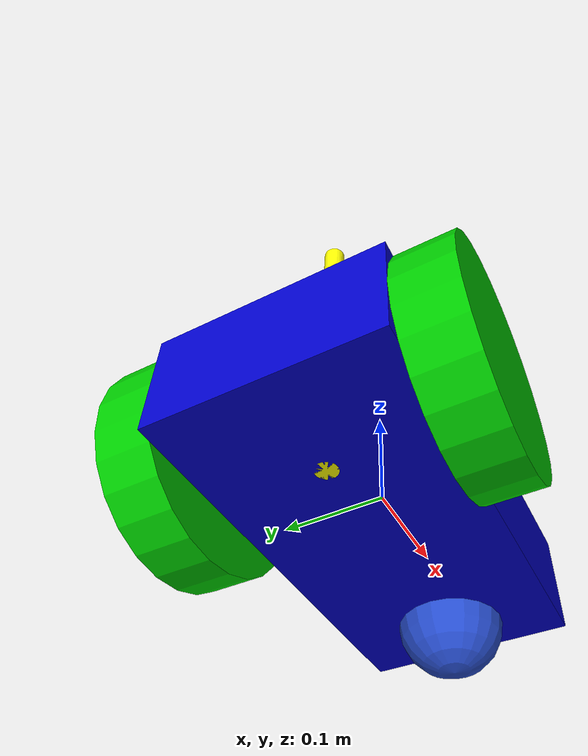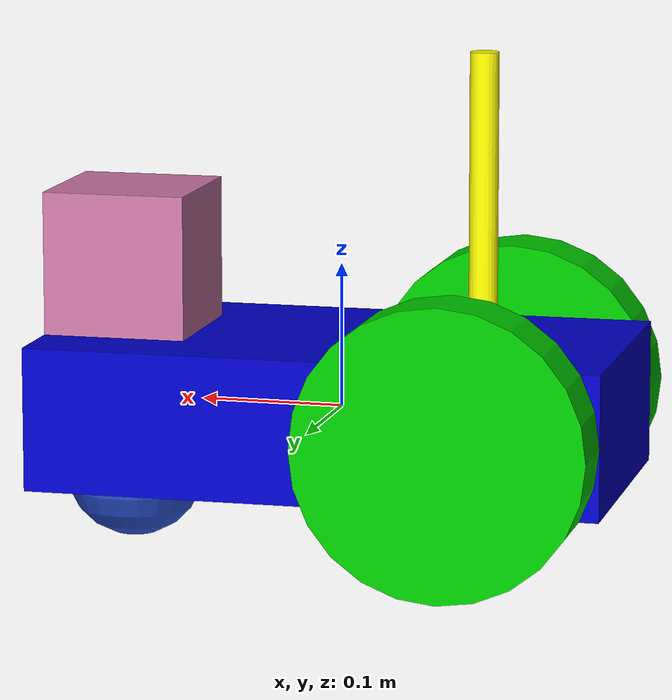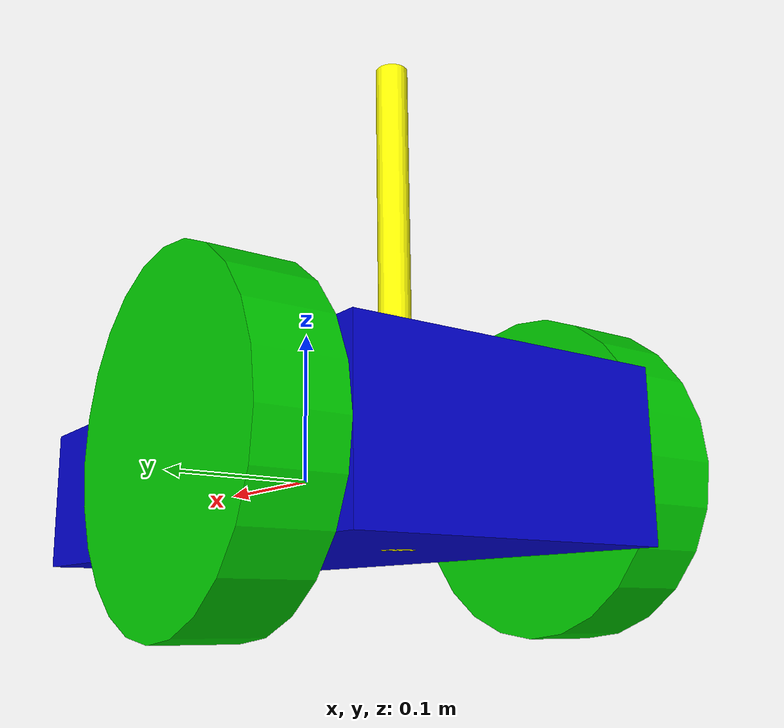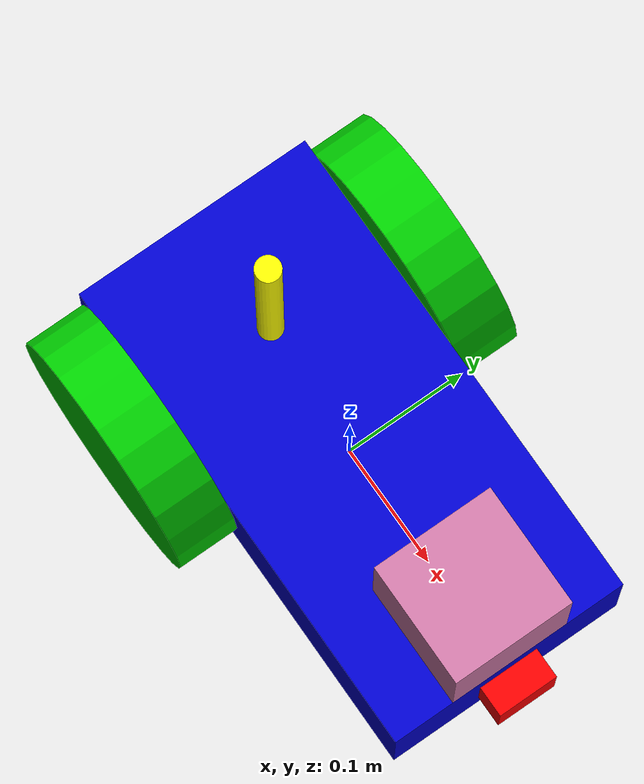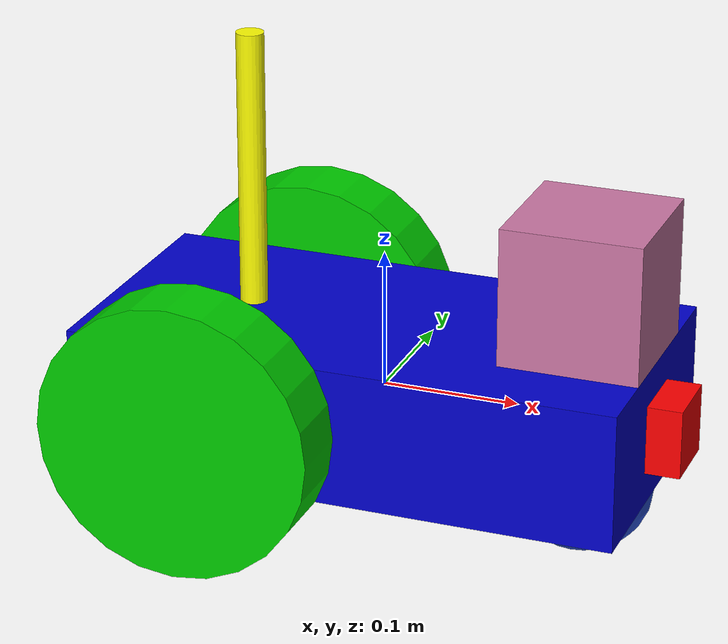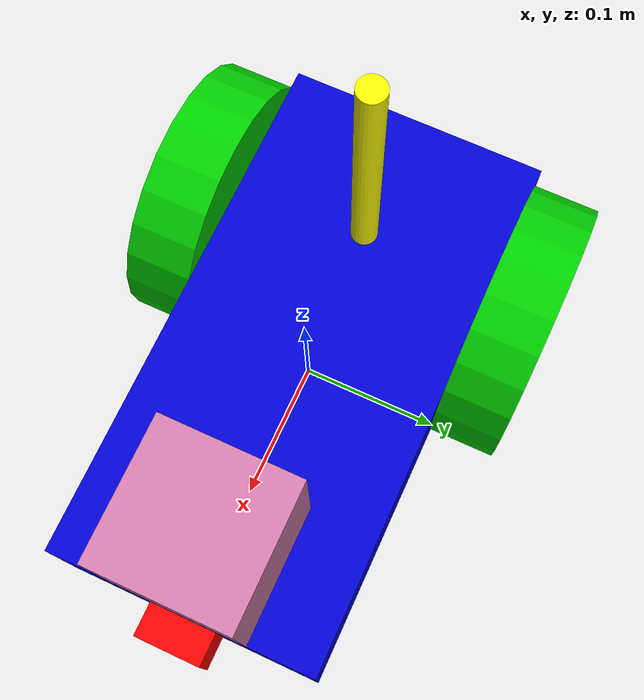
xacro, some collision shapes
<?xml version='1.0'?>

<robot name="my_robot" xmlns:xacro="http://www.ros.org/wiki/xacro">

  <xacro:include filename="$(find my_robot)/urdf/my_robot.gazebo" />

  <material name="blue">
    <color rgba="0 0 0.8 1"/>
  </material>

  <material name="red">
    <color rgba="1 0 0 1"/>
  </material>

  <material name="green">
    <color rgba="0 0.8 0 1"/>
  </material>

  <material name="yellow">
    <color rgba="1 1 0 1"/>
  </material>

  <link name="robot_footprint"></link>

  <joint name="robot_footprint_joint" type="fixed">
    <origin xyz="0 0 0" rpy="0 0 0" />
    <parent link="robot_footprint"/>
    <child link="chassis" />
  </joint>

  <link name='chassis'>
    <pose>0 0 0.1 0 0 0</pose>

    <inertial>
      <mass value="15.0"/>
      <origin xyz="0.0 0 0" rpy=" 0 0 0"/>
      <inertia
          ixx="0.1" ixy="0" ixz="0"
          iyy="0.1" iyz="0"
          izz="0.1"
      />
    </inertial>

    <collision name='collision'>
      <origin xyz="0 0 0" rpy=" 0 0 0"/>
      <geometry>
        <box size=".4 .2 .1"/>
      </geometry>
    </collision>

    <visual name='chassis_visual'>
      <origin xyz="0 0 0" rpy=" 0 0 0"/>
      <geometry>
        <box size=".4 .2 .1"/>
      </geometry>
      <material name="blue"/>
    </visual>

    <collision name='front_caster_collision'>
      <origin xyz="0.15 0 -0.05" rpy=" 0 0 0"/>
      <geometry>
        <sphere radius="0.0499"/>
      </geometry>
    </collision>

    <visual name='front_caster_visual'>
      <origin xyz="0.15 0 -0.05" rpy=" 0 0 0"/>
      <geometry>
        <sphere radius="0.05"/>
      </geometry>
    </visual>

  </link>

  <link name='antenna'>
    <pose>0 0 0.1 0 0 0</pose>

    <inertial>
      <mass value="5.0"/>
      <origin xyz="0 0 0" rpy=" 0 0 0"/>
      <inertia
          ixx="0.1" ixy="0" ixz="0"
          iyy="0.1" iyz="0"
          izz="0.1"
      />
    </inertial>

    <collision name='antenna_collision'>
      <origin xyz="-0.1 0 0.1" rpy=" 0 0 0"/>
      <geometry>
        <cylinder radius="0.01" length="0.3"/>
      </geometry>
    </collision>

    <visual name='antenna_visual'>
      <origin xyz="-0.1 0 0.1" rpy=" 0 0 0"/>
      <geometry>
        <cylinder radius="0.01" length="0.3"/>
      </geometry>
      <material name="yellow"/>
    </visual>

  </link>

  <link name='left_wheel'>
    <pose>0 0 0.1 0 0 0</pose>

    <inertial>
      <mass value="5.0"/>
      <origin xyz="0 0 0" rpy=" 0 1.5707 1.5707"/>
      <inertia
          ixx="0.1" ixy="0" ixz="0"
          iyy="0.1" iyz="0"
          izz="0.1"
      />
    </inertial>

    <collision name='left_wheel_collision'>
      <origin xyz="0 0 0" rpy=" 0 1.5707 1.5707"/>
      <geometry>
        <cylinder radius="0.1" length="0.05"/>
      </geometry>
    </collision>

    <visual name='left_wheel_visual'>
      <origin xyz="0 0 0" rpy=" 0 1.5707 1.5707"/>
      <geometry>
        <cylinder radius="0.1" length="0.05"/>
      </geometry>
      <material name="green"/>
    </visual>
  </link>

  <link name='right_wheel'>
    <pose>0 0 0.1 0 0 0</pose>

    <inertial>
      <mass value="5.0"/>
      <origin xyz="0 0 0" rpy=" 0 1.5707 1.5707"/>
      <inertia
          ixx="0.1" ixy="0" ixz="0"
          iyy="0.1" iyz="0"
          izz="0.1"
      />
    </inertial>

    <collision name='right_wheel_collision'>
      <origin xyz="0 0 0" rpy=" 0 1.5707 1.5707"/>
      <geometry>
        <cylinder radius="0.1" length="0.05"/>
      </geometry>
    </collision>

    <visual name='right_wheel_visual'>
      <origin xyz="0 0 0" rpy=" 0 1.5707 1.5707"/>
      <geometry>
        <cylinder radius="0.1" length="0.05"/>
      </geometry>
      <material name="green"/>
    </visual>
  </link>

  <link name='camera'>
    <pose>0 0 0 0 0 0</pose>

    <inertial>
      <mass value="0.1"/>
      <origin xyz="0 0 0" rpy=" 0 0 0"/>
      <inertia
          ixx="1e-6" ixy="0" ixz="0"
          iyy="1e-6" iyz="0"
          izz="1e-6"
      />
    </inertial>

    <collision name='camera_collision'>
      <origin xyz="0 0 0" rpy=" 0 0 0"/>
      <geometry>
        <box size="0.05 0.05 0.05"/>
      </geometry>
    </collision>

    <visual name='camera_visual'>
      <origin xyz="0 0 0" rpy=" 0 0 0"/>
      <geometry>
        <box size="0.05 0.05 0.05"/>
      </geometry>
      <material name="red"/>
    </visual>
  </link>

  <link name='hokuyo'>
    <pose>0 0 0 0 0 0</pose>

    <inertial>
      <mass value="1e-5"/>
      <origin xyz="0 0 0" rpy=" 0 0 0"/>
      <inertia
          ixx="1e-6" ixy="0" ixz="0"
          iyy="1e-6" iyz="0"
          izz="1e-6"
      />
    </inertial>

    <collision name='hokuyo_collision'>
      <origin xyz="0 0 0" rpy=" 0 0 0"/>
      <geometry>
        <box size="0.1 0.1 0.1"/>
      </geometry>
    </collision>

    <visual name='hokuyo_visual'>
      <origin xyz="0 0 0" rpy=" 0 0 0"/>
      <geometry>
        <mesh filename="package://my_robot/meshes/hokuyo.dae"/>
      </geometry>
    </visual>
  </link>

  <link name="camera_link_optical">
  </link>

  <joint name="camera_optical_joint" type="fixed">
    <origin xyz="0 0 0" rpy="-1.5707 0 -1.5707"/>
    <parent link="camera"/>
    <child link="camera_link_optical"/>
  </joint>

  <joint type="continuous" name="left_wheel_hinge">
    <origin xyz="-0.1 0.125 0" rpy="0 0 0"/>
    <child link="left_wheel"/>
    <parent link="chassis"/>
    <axis xyz="0 1 0" rpy="0 0 0"/>
    <limit effort="10000" velocity="1000"/>
    <dynamics damping="1.0" friction="1.0"/>
  </joint>

  <joint type="continuous" name="right_wheel_hinge">
    <origin xyz="-0.1 -0.125 0" rpy="0 0 0"/>
    <child link="right_wheel"/>
    <parent link="chassis"/>
    <axis xyz="0 1 0" rpy="0 0 0"/>
    <limit effort="10000" velocity="1000"/>
    <dynamics damping="1.0" friction="1.0"/>
  </joint>

  <joint type="fixed" name="camera_joint">
    <origin xyz="0.2 0 0" rpy="0 0 0"/>
    <child link="camera"/>
    <parent link="chassis"/>
    <axis xyz="0 1 0" rpy="0 0 0"/>
  </joint>

  <joint type="fixed" name="hokuyo_joint">
    <origin xyz="0.15 0 0.1" rpy="0 0 0"/>
    <child link="hokuyo"/>
    <parent link="chassis"/>
    <axis xyz="0 1 0" rpy="0 0 0"/>
  </joint>

  <joint type="fixed" name="antenna_joint">
    <origin xyz="0 0 0" rpy="0 0 0"/>
    <child link="antenna"/>
    <parent link="chassis"/>
    <axis xyz="0 0 1" rpy="0 0 0"/>
  </joint>

  <gazebo reference="chassis">
    <material>Gazebo/Blue</material>
  </gazebo>

  <gazebo reference="left_wheel">
    <material>Gazebo/Green</material>
  </gazebo>

  <gazebo reference="right_wheel">
    <material>Gazebo/Green</material>
  </gazebo>

  <gazebo reference="camera">
    <material>Gazebo/Red</material>
  </gazebo>

  <gazebo reference="antenna">
    <material>Gazebo/Yellow</material>
  </gazebo>

</robot>
